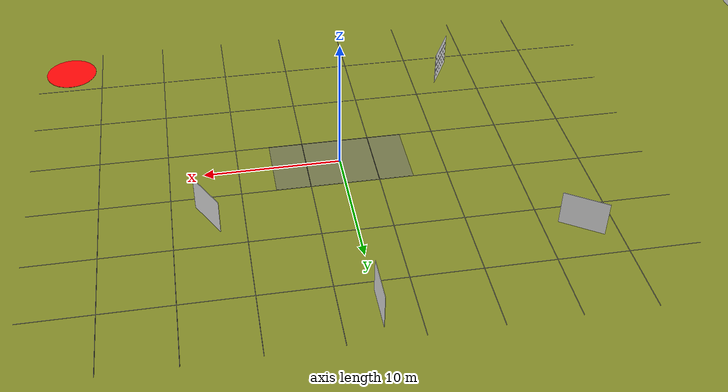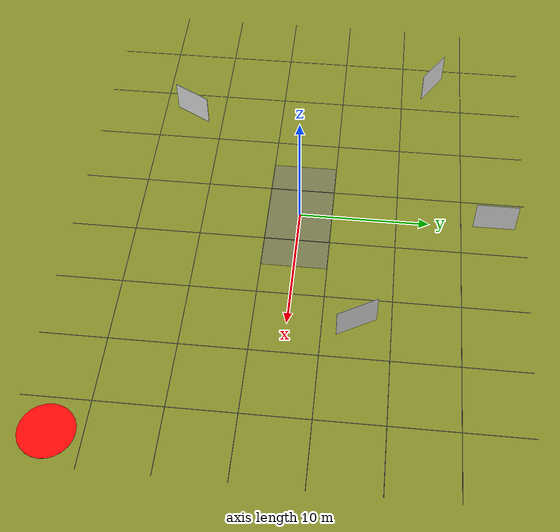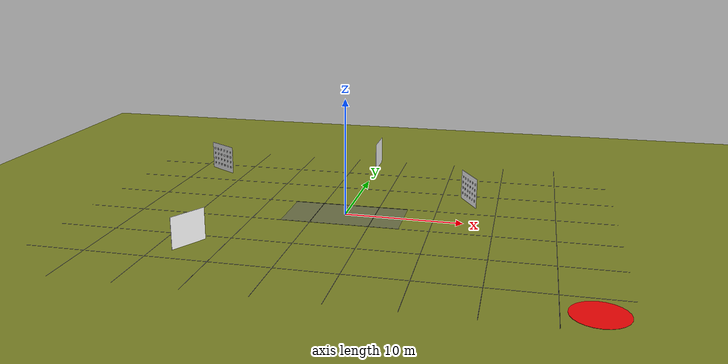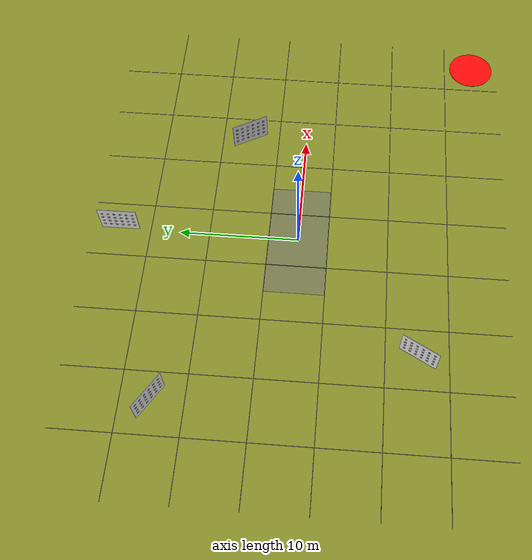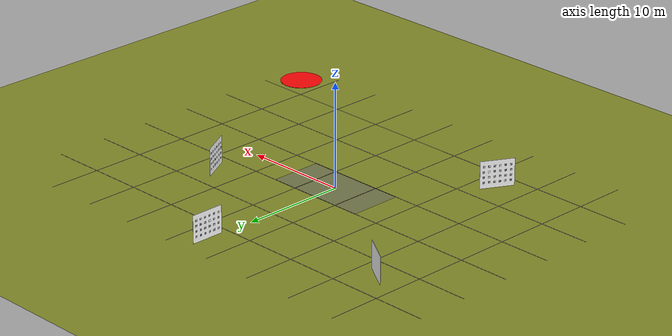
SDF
<?xml version="1.0" encoding="UTF-8"?>
<sdf version="1.9">
  <world name="wildlife_inspection">
    <physics type="ode">
      <max_step_size>0.004</max_step_size>
      <real_time_factor>1.0</real_time_factor>
      <real_time_update_rate>250</real_time_update_rate>
    </physics>

    <plugin name="gz::sim::systems::Physics" filename="gz-sim-physics-system"/>
    <plugin name="gz::sim::systems::UserCommands" filename="gz-sim-user-commands-system"/>
    <plugin name="gz::sim::systems::SceneBroadcaster" filename="gz-sim-scene-broadcaster-system"/>
    <plugin name="gz::sim::systems::Contact" filename="gz-sim-contact-system"/>
    <plugin name="gz::sim::systems::Imu" filename="gz-sim-imu-system"/>
    <plugin name="gz::sim::systems::AirPressure" filename="gz-sim-air-pressure-system"/>
    <plugin name="gz::sim::systems::ApplyLinkWrench" filename="gz-sim-apply-link-wrench-system"/>
    <plugin name="gz::sim::systems::NavSat" filename="gz-sim-navsat-system"/>
    <plugin name="gz::sim::systems::Sensors" filename="gz-sim-sensors-system">
      <render_engine>ogre2</render_engine>
    </plugin>

    <gravity>0 0 -9.8</gravity>
    <magnetic_field>6e-06 2.3e-05 -4.2e-05</magnetic_field>
    <atmosphere type="adiabatic"/>

    <scene>
      <grid>false</grid>
      <ambient>0.55 0.55 0.45 1</ambient>
      <background>0.72 0.82 0.92 1</background>
      <shadows>true</shadows>
    </scene>

    <!-- The 45 x 35 m simulation field represents the scaled 450 x 350 m
         H2025 inspection area. -->
    <model name="ground_plane">
      <static>true</static>
      <link name="ground_link">
        <collision name="ground_collision">
          <geometry>
            <plane>
              <normal>0 0 1</normal>
              <size>45 35</size>
            </plane>
          </geometry>
        </collision>
        <visual name="grass_wilderness_surface">
          <geometry>
            <plane>
              <normal>0 0 1</normal>
              <size>45 35</size>
            </plane>
          </geometry>
          <material>
            <ambient>0.42 0.48 0.12 1</ambient>
            <diffuse>0.52 0.55 0.16 1</diffuse>
            <specular>0.02 0.02 0.01 1</specular>
          </material>
        </visual>
      </link>
    </model>

    <!-- Grid coordinates: columns A1-A9 through rows G1-G9. Each cell is
         5 x 5 m. A is the north row and cell 1 is the west column. -->
    <model name="wildlife_inspection">
      <static>true</static>
      <link name="practice_markings">
        <!-- Vertical grid lines separating columns 1 through 9. -->
        <visual name="grid_v1"><pose>-17.5 0 0.012 0 0 0</pose><geometry><box><size>0.04 35 0.012</size></box></geometry><material><ambient>0.01 0.01 0.01 1</ambient><diffuse>0.01 0.01 0.01 1</diffuse></material></visual>
        <visual name="grid_v2"><pose>-12.5 0 0.012 0 0 0</pose><geometry><box><size>0.04 35 0.012</size></box></geometry><material><ambient>0.01 0.01 0.01 1</ambient><diffuse>0.01 0.01 0.01 1</diffuse></material></visual>
        <visual name="grid_v3"><pose>-7.5 0 0.012 0 0 0</pose><geometry><box><size>0.04 35 0.012</size></box></geometry><material><ambient>0.01 0.01 0.01 1</ambient><diffuse>0.01 0.01 0.01 1</diffuse></material></visual>
        <visual name="grid_v4"><pose>-2.5 0 0.012 0 0 0</pose><geometry><box><size>0.04 35 0.012</size></box></geometry><material><ambient>0.01 0.01 0.01 1</ambient><diffuse>0.01 0.01 0.01 1</diffuse></material></visual>
        <visual name="grid_v5"><pose>2.5 0 0.012 0 0 0</pose><geometry><box><size>0.04 35 0.012</size></box></geometry><material><ambient>0.01 0.01 0.01 1</ambient><diffuse>0.01 0.01 0.01 1</diffuse></material></visual>
        <visual name="grid_v6"><pose>7.5 0 0.012 0 0 0</pose><geometry><box><size>0.04 35 0.012</size></box></geometry><material><ambient>0.01 0.01 0.01 1</ambient><diffuse>0.01 0.01 0.01 1</diffuse></material></visual>
        <visual name="grid_v7"><pose>12.5 0 0.012 0 0 0</pose><geometry><box><size>0.04 35 0.012</size></box></geometry><material><ambient>0.01 0.01 0.01 1</ambient><diffuse>0.01 0.01 0.01 1</diffuse></material></visual>
        <visual name="grid_v8"><pose>17.5 0 0.012 0 0 0</pose><geometry><box><size>0.04 35 0.012</size></box></geometry><material><ambient>0.01 0.01 0.01 1</ambient><diffuse>0.01 0.01 0.01 1</diffuse></material></visual>

        <!-- Horizontal grid lines separating rows A through G. -->
        <visual name="grid_h1"><pose>0 -12.5 0.012 0 0 0</pose><geometry><box><size>45 0.04 0.012</size></box></geometry><material><ambient>0.01 0.01 0.01 1</ambient><diffuse>0.01 0.01 0.01 1</diffuse></material></visual>
        <visual name="grid_h2"><pose>0 -7.5 0.012 0 0 0</pose><geometry><box><size>45 0.04 0.012</size></box></geometry><material><ambient>0.01 0.01 0.01 1</ambient><diffuse>0.01 0.01 0.01 1</diffuse></material></visual>
        <visual name="grid_h3"><pose>0 -2.5 0.012 0 0 0</pose><geometry><box><size>45 0.04 0.012</size></box></geometry><material><ambient>0.01 0.01 0.01 1</ambient><diffuse>0.01 0.01 0.01 1</diffuse></material></visual>
        <visual name="grid_h4"><pose>0 2.5 0.012 0 0 0</pose><geometry><box><size>45 0.04 0.012</size></box></geometry><material><ambient>0.01 0.01 0.01 1</ambient><diffuse>0.01 0.01 0.01 1</diffuse></material></visual>
        <visual name="grid_h5"><pose>0 7.5 0.012 0 0 0</pose><geometry><box><size>45 0.04 0.012</size></box></geometry><material><ambient>0.01 0.01 0.01 1</ambient><diffuse>0.01 0.01 0.01 1</diffuse></material></visual>
        <visual name="grid_h6"><pose>0 12.5 0.012 0 0 0</pose><geometry><box><size>45 0.04 0.012</size></box></geometry><material><ambient>0.01 0.01 0.01 1</ambient><diffuse>0.01 0.01 0.01 1</diffuse></material></visual>

        <!-- Semi-transparent no-fly region near the center. -->
        <visual name="no_fly_zone">
          <pose>0 0 0.02 0 0 0</pose>
          <geometry><box><size>10 5 0.01</size></box></geometry>
          <material>
            <ambient>0.35 0.35 0.35 0.55</ambient>
            <diffuse>0.45 0.45 0.45 0.55</diffuse>
          </material>
          <transparency>0.45</transparency>
        </visual>

        <!-- Red takeoff area in the south-east / lower-right corner. -->
        <visual name="takeoff_area">
          <pose>20 -15 0.02 0 0 0</pose>
          <geometry><cylinder><radius>2</radius><length>0.02</length></cylinder></geometry>
          <material>
            <ambient>0.9 0.02 0.02 1</ambient>
            <diffuse>1 0.03 0.03 1</diffuse>
            <emissive>0.12 0 0 1</emissive>
          </material>
        </visual>
      </link>
    </model>

    <!-- Animal distribution: elephant A5, tiger C7, deer F3, monkey B2. -->
    <include>
      <name>elephant</name>
      <uri>file:///home/a-corn/2025h/PX4-Autopilot/Tools/simulation/gz/models/wildlife/elephant/model.sdf</uri>
      <pose>0 15 0 0 0 0</pose>
    </include>
    <include>
      <name>tiger</name>
      <uri>file:///home/a-corn/2025h/PX4-Autopilot/Tools/simulation/gz/models/wildlife/tiger/model.sdf</uri>
      <pose>10 5 0 0 0 0.5</pose>
    </include>
    <include>
      <name>deer</name>
      <uri>file:///home/a-corn/2025h/PX4-Autopilot/Tools/simulation/gz/models/wildlife/deer/model.sdf</uri>
      <pose>-10 -10 0 0 0 -0.5</pose>
    </include>
    <include>
      <name>monkey</name>
      <uri>file:///home/a-corn/2025h/PX4-Autopilot/Tools/simulation/gz/models/wildlife/monkey/model.sdf</uri>
      <pose>-15 10 0 0 0 1.0</pose>
    </include>

    <light name="sun" type="directional">
      <pose>0 0 500 0 0 0</pose>
      <cast_shadows>true</cast_shadows>
      <intensity>1</intensity>
      <direction>-0.2 0.4 -0.88</direction>
      <diffuse>0.95 0.92 0.82 1</diffuse>
      <specular>0.2 0.2 0.2 1</specular>
    </light>

    <spherical_coordinates>
      <surface_model>EARTH_WGS84</surface_model>
      <world_frame_orientation>ENU</world_frame_orientation>
      <latitude_deg>47.397971057728974</latitude_deg>
      <longitude_deg>8.546163739800146</longitude_deg>
      <elevation>0</elevation>
    </spherical_coordinates>
  </world>
</sdf>

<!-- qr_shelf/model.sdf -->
<sdf version="1.9"><model name="qr_shelf"><static>true</static>
  <link name="shelf">
    <visual name="white_back"><pose>0.015 0 1.5 0 0 0</pose>
      <geometry><box><size>0.03 3.2 2.6</size></box></geometry>
      <material><diffuse>0.95 0.95 0.95 1</diffuse></material></visual>
    <collision name="back_collision"><pose>0.03 0 1.5 0 0 0</pose>
      <geometry><box><size>0.06 3.2 2.6</size></box></geometry></collision>

        <visual name="qr_01_black">
          <pose>-0.002 -1.25 2.25 0 0 0</pose>
          <geometry><box><size>0.004 0.19 0.19</size></box></geometry>
          <material><ambient>0 0 0 1</ambient><diffuse>0 0 0 1</diffuse>
          <specular>0 0 0 1</specular></material>
        </visual>
        <visual name="qr_01_modules">
          <pose>-0.005 -1.25 2.25 0 0 0</pose>
          <geometry><mesh><uri>meshes/qr_01.dae</uri></mesh></geometry>
          <material><ambient>1 1 1 1</ambient><diffuse>1 1 1 1</diffuse>
          <specular>0 0 0 1</specular></material>
        </visual>
        <visual name="qr_02_black">
          <pose>-0.002 -0.75 2.25 0 0 0</pose>
          <geometry><box><size>0.004 0.19 0.19</size></box></geometry>
          <material><ambient>0 0 0 1</ambient><diffuse>0 0 0 1</diffuse>
          <specular>0 0 0 1</specular></material>
        </visual>
        <visual name="qr_02_modules">
          <pose>-0.005 -0.75 2.25 0 0 0</pose>
          <geometry><mesh><uri>meshes/qr_02.dae</uri></mesh></geometry>
          <material><ambient>1 1 1 1</ambient><diffuse>1 1 1 1</diffuse>
          <specular>0 0 0 1</specular></material>
        </visual>
        <visual name="qr_03_black">
          <pose>-0.002 -0.25 2.25 0 0 0</pose>
          <geometry><box><size>0.004 0.19 0.19</size></box></geometry>
          <material><ambient>0 0 0 1</ambient><diffuse>0 0 0 1</diffuse>
          <specular>0 0 0 1</specular></material>
        </visual>
        <visual name="qr_03_modules">
          <pose>-0.005 -0.25 2.25 0 0 0</pose>
          <geometry><mesh><uri>meshes/qr_03.dae</uri></mesh></geometry>
          <material><ambient>1 1 1 1</ambient><diffuse>1 1 1 1</diffuse>
          <specular>0 0 0 1</specular></material>
        </visual>
        <visual name="qr_04_black">
          <pose>-0.002 0.25 2.25 0 0 0</pose>
          <geometry><box><size>0.004 0.19 0.19</size></box></geometry>
          <material><ambient>0 0 0 1</ambient><diffuse>0 0 0 1</diffuse>
          <specular>0 0 0 1</specular></material>
        </visual>
        <visual name="qr_04_modules">
          <pose>-0.005 0.25 2.25 0 0 0</pose>
          <geometry><mesh><uri>meshes/qr_04.dae</uri></mesh></geometry>
          <material><ambient>1 1 1 1</ambient><diffuse>1 1 1 1</diffuse>
          <specular>0 0 0 1</specular></material>
        </visual>
        <visual name="qr_05_black">
          <pose>-0.002 0.75 2.25 0 0 0</pose>
          <geometry><box><size>0.004 0.19 0.19</size></box></geometry>
          <material><ambient>0 0 0 1</ambient><diffuse>0 0 0 1</diffuse>
          <specular>0 0 0 1</specular></material>
        </visual>
        <visual name="qr_05_modules">
          <pose>-0.005 0.75 2.25 0 0 0</pose>
          <geometry><mesh><uri>meshes/qr_05.dae</uri></mesh></geometry>
          <material><ambient>1 1 1 1</ambient><diffuse>1 1 1 1</diffuse>
          <specular>0 0 0 1</specular></material>
        </visual>
        <visual name="qr_06_black">
          <pose>-0.002 1.25 2.25 0 0 0</pose>
          <geometry><box><size>0.004 0.19 0.19</size></box></geometry>
          <material><ambient>0 0 0 1</ambient><diffuse>0 0 0 1</diffuse>
          <specular>0 0 0 1</specular></material>
        </visual>
        <visual name="qr_06_modules">
          <pose>-0.005 1.25 2.25 0 0 0</pose>
          <geometry><mesh><uri>meshes/qr_06.dae</uri></mesh></geometry>
          <material><ambient>1 1 1 1</ambient><diffuse>1 1 1 1</diffuse>
          <specular>0 0 0 1</specular></material>
        </visual>
        <visual name="qr_07_black">
          <pose>-0.002 -1.25 1.75 0 0 0</pose>
          <geometry><box><size>0.004 0.19 0.19</size></box></geometry>
          <material><ambient>0 0 0 1</ambient><diffuse>0 0 0 1</diffuse>
          <specular>0 0 0 1</specular></material>
        </visual>
        <visual name="qr_07_modules">
          <pose>-0.005 -1.25 1.75 0 0 0</pose>
          <geometry><mesh><uri>meshes/qr_07.dae</uri></mesh></geometry>
          <material><ambient>1 1 1 1</ambient><diffuse>1 1 1 1</diffuse>
          <specular>0 0 0 1</specular></material>
        </visual>
        <visual name="qr_08_black">
          <pose>-0.002 -0.75 1.75 0 0 0</pose>
          <geometry><box><size>0.004 0.19 0.19</size></box></geometry>
          <material><ambient>0 0 0 1</ambient><diffuse>0 0 0 1</diffuse>
          <specular>0 0 0 1</specular></material>
        </visual>
        <visual name="qr_08_modules">
          <pose>-0.005 -0.75 1.75 0 0 0</pose>
          <geometry><mesh><uri>meshes/qr_08.dae</uri></mesh></geometry>
          <material><ambient>1 1 1 1</ambient><diffuse>1 1 1 1</diffuse>
          <specular>0 0 0 1</specular></material>
        </visual>
        <visual name="qr_09_black">
          <pose>-0.002 -0.25 1.75 0 0 0</pose>
          <geometry><box><size>0.004 0.19 0.19</size></box></geometry>
          <material><ambient>0 0 0 1</ambient><diffuse>0 0 0 1</diffuse>
          <specular>0 0 0 1</specular></material>
        </visual>
        <visual name="qr_09_modules">
          <pose>-0.005 -0.25 1.75 0 0 0</pose>
          <geometry><mesh><uri>meshes/qr_09.dae</uri></mesh></geometry>
          <material><ambient>1 1 1 1</ambient><diffuse>1 1 1 1</diffuse>
          <specular>0 0 0 1</specular></material>
        </visual>
        <visual name="qr_10_black">
          <pose>-0.002 0.25 1.75 0 0 0</pose>
          <geometry><box><size>0.004 0.19 0.19</size></box></geometry>
          <material><ambient>0 0 0 1</ambient><diffuse>0 0 0 1</diffuse>
          <specular>0 0 0 1</specular></material>
        </visual>
        <visual name="qr_10_modules">
          <pose>-0.005 0.25 1.75 0 0 0</pose>
          <geometry><mesh><uri>meshes/qr_10.dae</uri></mesh></geometry>
          <material><ambient>1 1 1 1</ambient><diffuse>1 1 1 1</diffuse>
          <specular>0 0 0 1</specular></material>
        </visual>
        <visual name="qr_11_black">
          <pose>-0.002 0.75 1.75 0 0 0</pose>
          <geometry><box><size>0.004 0.19 0.19</size></box></geometry>
          <material><ambient>0 0 0 1</ambient><diffuse>0 0 0 1</diffuse>
          <specular>0 0 0 1</specular></material>
        </visual>
        <visual name="qr_11_modules">
          <pose>-0.005 0.75 1.75 0 0 0</pose>
          <geometry><mesh><uri>meshes/qr_11.dae</uri></mesh></geometry>
          <material><ambient>1 1 1 1</ambient><diffuse>1 1 1 1</diffuse>
          <specular>0 0 0 1</specular></material>
        </visual>
        <visual name="qr_12_black">
          <pose>-0.002 1.25 1.75 0 0 0</pose>
          <geometry><box><size>0.004 0.19 0.19</size></box></geometry>
          <material><ambient>0 0 0 1</ambient><diffuse>0 0 0 1</diffuse>
          <specular>0 0 0 1</specular></material>
        </visual>
        <visual name="qr_12_modules">
          <pose>-0.005 1.25 1.75 0 0 0</pose>
          <geometry><mesh><uri>meshes/qr_12.dae</uri></mesh></geometry>
          <material><ambient>1 1 1 1</ambient><diffuse>1 1 1 1</diffuse>
          <specular>0 0 0 1</specular></material>
        </visual>
        <visual name="qr_13_black">
          <pose>-0.002 -1.25 1.25 0 0 0</pose>
          <geometry><box><size>0.004 0.19 0.19</size></box></geometry>
          <material><ambient>0 0 0 1</ambient><diffuse>0 0 0 1</diffuse>
          <specular>0 0 0 1</specular></material>
        </visual>
        <visual name="qr_13_modules">
          <pose>-0.005 -1.25 1.25 0 0 0</pose>
          <geometry><mesh><uri>meshes/qr_13.dae</uri></mesh></geometry>
          <material><ambient>1 1 1 1</ambient><diffuse>1 1 1 1</diffuse>
          <specular>0 0 0 1</specular></material>
        </visual>
        <visual name="qr_14_black">
          <pose>-0.002 -0.75 1.25 0 0 0</pose>
          <geometry><box><size>0.004 0.19 0.19</size></box></geometry>
          <material><ambient>0 0 0 1</ambient><diffuse>0 0 0 1</diffuse>
          <specular>0 0 0 1</specular></material>
        </visual>
        <visual name="qr_14_modules">
          <pose>-0.005 -0.75 1.25 0 0 0</pose>
          <geometry><mesh><uri>meshes/qr_14.dae</uri></mesh></geometry>
          <material><ambient>1 1 1 1</ambient><diffuse>1 1 1 1</diffuse>
          <specular>0 0 0 1</specular></material>
        </visual>
        <visual name="qr_15_black">
          <pose>-0.002 -0.25 1.25 0 0 0</pose>
          <geometry><box><size>0.004 0.19 0.19</size></box></geometry>
          <material><ambient>0 0 0 1</ambient><diffuse>0 0 0 1</diffuse>
          <specular>0 0 0 1</specular></material>
        </visual>
        <visual name="qr_15_modules">
          <pose>-0.005 -0.25 1.25 0 0 0</pose>
          <geometry><mesh><uri>meshes/qr_15.dae</uri></mesh></geometry>
          <material><ambient>1 1 1 1</ambient><diffuse>1 1 1 1</diffuse>
          <specular>0 0 0 1</specular></material>
        </visual>
        <visual name="qr_16_black">
          <pose>-0.002 0.25 1.25 0 0 0</pose>
          <geometry><box><size>0.004 0.19 0.19</size></box></geometry>
          <material><ambient>0 0 0 1</ambient><diffuse>0 0 0 1</diffuse>
          <specular>0 0 0 1</specular></material>
        </visual>
        <visual name="qr_16_modules">
          <pose>-0.005 0.25 1.25 0 0 0</pose>
          <geometry><mesh><uri>meshes/qr_16.dae</uri></mesh></geometry>
          <material><ambient>1 1 1 1</ambient><diffuse>1 1 1 1</diffuse>
          <specular>0 0 0 1</specular></material>
        </visual>
        <visual name="qr_17_black">
          <pose>-0.002 0.75 1.25 0 0 0</pose>
          <geometry><box><size>0.004 0.19 0.19</size></box></geometry>
          <material><ambient>0 0 0 1</ambient><diffuse>0 0 0 1</diffuse>
          <specular>0 0 0 1</specular></material>
        </visual>
        <visual name="qr_17_modules">
          <pose>-0.005 0.75 1.25 0 0 0</pose>
          <geometry><mesh><uri>meshes/qr_17.dae</uri></mesh></geometry>
          <material><ambient>1 1 1 1</ambient><diffuse>1 1 1 1</diffuse>
          <specular>0 0 0 1</specular></material>
        </visual>
        <visual name="qr_18_black">
          <pose>-0.002 1.25 1.25 0 0 0</pose>
          <geometry><box><size>0.004 0.19 0.19</size></box></geometry>
          <material><ambient>0 0 0 1</ambient><diffuse>0 0 0 1</diffuse>
          <specular>0 0 0 1</specular></material>
        </visual>
        <visual name="qr_18_modules">
          <pose>-0.005 1.25 1.25 0 0 0</pose>
          <geometry><mesh><uri>meshes/qr_18.dae</uri></mesh></geometry>
          <material><ambient>1 1 1 1</ambient><diffuse>1 1 1 1</diffuse>
          <specular>0 0 0 1</specular></material>
        </visual>
        <visual name="qr_19_black">
          <pose>-0.002 -1.25 0.75 0 0 0</pose>
          <geometry><box><size>0.004 0.19 0.19</size></box></geometry>
          <material><ambient>0 0 0 1</ambient><diffuse>0 0 0 1</diffuse>
          <specular>0 0 0 1</specular></material>
        </visual>
        <visual name="qr_19_modules">
          <pose>-0.005 -1.25 0.75 0 0 0</pose>
          <geometry><mesh><uri>meshes/qr_19.dae</uri></mesh></geometry>
          <material><ambient>1 1 1 1</ambient><diffuse>1 1 1 1</diffuse>
          <specular>0 0 0 1</specular></material>
        </visual>
        <visual name="qr_20_black">
          <pose>-0.002 -0.75 0.75 0 0 0</pose>
          <geometry><box><size>0.004 0.19 0.19</size></box></geometry>
          <material><ambient>0 0 0 1</ambient><diffuse>0 0 0 1</diffuse>
          <specular>0 0 0 1</specular></material>
        </visual>
        <visual name="qr_20_modules">
          <pose>-0.005 -0.75 0.75 0 0 0</pose>
          <geometry><mesh><uri>meshes/qr_20.dae</uri></mesh></geometry>
          <material><ambient>1 1 1 1</ambient><diffuse>1 1 1 1</diffuse>
          <specular>0 0 0 1</specular></material>
        </visual>
        <visual name="qr_21_black">
          <pose>-0.002 -0.25 0.75 0 0 0</pose>
          <geometry><box><size>0.004 0.19 0.19</size></box></geometry>
          <material><ambient>0 0 0 1</ambient><diffuse>0 0 0 1</diffuse>
          <specular>0 0 0 1</specular></material>
        </visual>
        <visual name="qr_21_modules">
          <pose>-0.005 -0.25 0.75 0 0 0</pose>
          <geometry><mesh><uri>meshes/qr_21.dae</uri></mesh></geometry>
          <material><ambient>1 1 1 1</ambient><diffuse>1 1 1 1</diffuse>
          <specular>0 0 0 1</specular></material>
        </visual>
        <visual name="qr_22_black">
          <pose>-0.002 0.25 0.75 0 0 0</pose>
          <geometry><box><size>0.004 0.19 0.19</size></box></geometry>
          <material><ambient>0 0 0 1</ambient><diffuse>0 0 0 1</diffuse>
          <specular>0 0 0 1</specular></material>
        </visual>
        <visual name="qr_22_modules">
          <pose>-0.005 0.25 0.75 0 0 0</pose>
          <geometry><mesh><uri>meshes/qr_22.dae</uri></mesh></geometry>
          <material><ambient>1 1 1 1</ambient><diffuse>1 1 1 1</diffuse>
          <specular>0 0 0 1</specular></material>
        </visual>
        <visual name="qr_23_black">
          <pose>-0.002 0.75 0.75 0 0 0</pose>
          <geometry><box><size>0.004 0.19 0.19</size></box></geometry>
          <material><ambient>0 0 0 1</ambient><diffuse>0 0 0 1</diffuse>
          <specular>0 0 0 1</specular></material>
        </visual>
        <visual name="qr_23_modules">
          <pose>-0.005 0.75 0.75 0 0 0</pose>
          <geometry><mesh><uri>meshes/qr_23.dae</uri></mesh></geometry>
          <material><ambient>1 1 1 1</ambient><diffuse>1 1 1 1</diffuse>
          <specular>0 0 0 1</specular></material>
        </visual>
        <visual name="qr_24_black">
          <pose>-0.002 1.25 0.75 0 0 0</pose>
          <geometry><box><size>0.004 0.19 0.19</size></box></geometry>
          <material><ambient>0 0 0 1</ambient><diffuse>0 0 0 1</diffuse>
          <specular>0 0 0 1</specular></material>
        </visual>
        <visual name="qr_24_modules">
          <pose>-0.005 1.25 0.75 0 0 0</pose>
          <geometry><mesh><uri>meshes/qr_24.dae</uri></mesh></geometry>
          <material><ambient>1 1 1 1</ambient><diffuse>1 1 1 1</diffuse>
          <specular>0 0 0 1</specular></material>
        </visual>
  </link>
</model></sdf>
